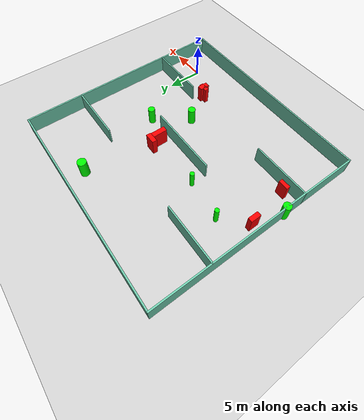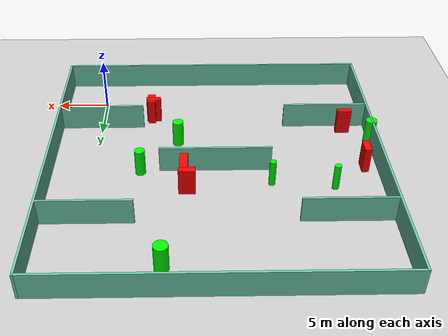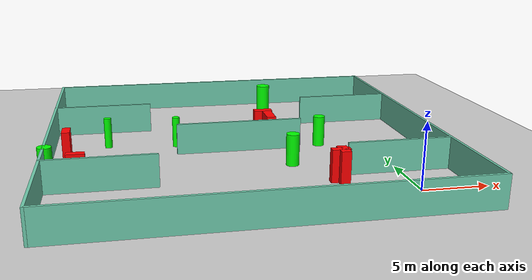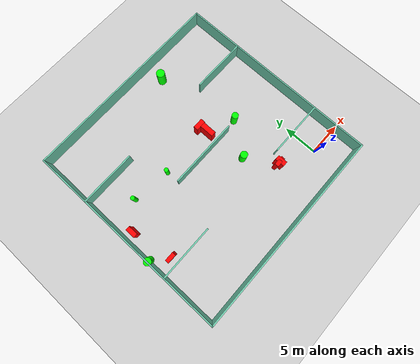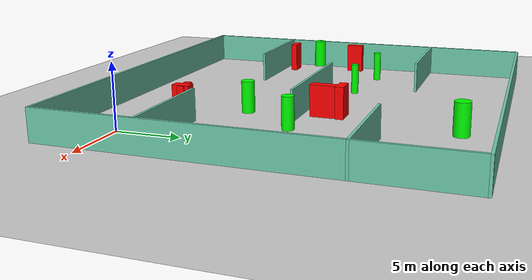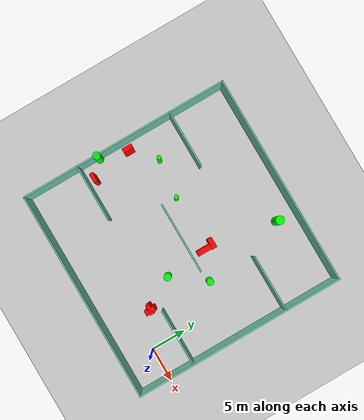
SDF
<sdf version="1.7">
 <world name="default">
  <light name="sun" type="directional">
   <pose>0 0 10 0 -0 0</pose>
   <diffuse>0.8 0.8 0.8 1</diffuse>
   <specular>0.2 0.2 0.2 1</specular>
   <attenuation>
    <range>1000</range>
    <constant>0.9</constant>
    <linear>0.01</linear>
    <quadratic>0.001</quadratic>
   </attenuation>
   <direction>-0.5 0.1 -0.9</direction>
   <spot><inner_angle>0</inner_angle><outer_angle>0</outer_angle><falloff>0</falloff></spot>
  </light>
  <model name="ground_plane">
   <static>1</static>
   <link name="link">
    <collision name="collision">
     <geometry><plane><normal>0 0 1</normal><size>100 100</size></plane></geometry>
     <surface>
      <contact><collide_bitmask>65535</collide_bitmask></contact>
      <friction><ode><mu>100</mu><mu2>50</mu2></ode></friction>
     </surface>
    </collision>
    <visual name="visual">
     <cast_shadows>0</cast_shadows>
     <geometry><plane><normal>0 0 1</normal><size>100 100</size></plane></geometry>
     <material>
      <script><uri>file://media/materials/scripts/gazebo.material</uri><name>Gazebo/Grey</name></script>
     </material>
    </visual>
   </link>
  </model>
  <gravity>0 0 -9.8</gravity>
  <magnetic_field>6e-06 2.3e-05 -4.2e-05</magnetic_field>
  <atmosphere type="adiabatic"/>
  <physics type="ode">
   <max_step_size>0.001</max_step_size>
   <real_time_factor>1</real_time_factor>
   <real_time_update_rate>1000</real_time_update_rate>
  </physics>
  <scene><ambient>0.4 0.4 0.4 1</ambient><background>0.7 0.7 0.7 1</background><shadows>1</shadows></scene>
  <spherical_coordinates>
   <surface_model>EARTH_WGS84</surface_model>
   <latitude_deg>0</latitude_deg>
   <longitude_deg>0</longitude_deg>
   <elevation>0</elevation>
   <heading_deg>0</heading_deg>
  </spherical_coordinates>
  <model name="my_base_walls">
   <link name="Wall_10">
    <collision name="Wall_10_Collision">
     <geometry><box><size>8.2 0.2 2.5</size></box></geometry>
     <pose>0 0 1.25 0 -0 0</pose>
    </collision>
    <visual name="Wall_10_Visual">
     <pose>0 0 1.25 0 -0 0</pose>
     <geometry><box><size>8.2 0.2 2.5</size></box></geometry>
     <material>
      <script><uri>file://media/materials/scripts/gazebo.material</uri><name>Gazebo/Grey</name></script>
      <ambient>0.435294 0.796078 0.67451 1</ambient>
     </material>
     <meta><layer>0</layer></meta>
    </visual>
    <pose>-11 -7 0 0 -0 0</pose>
   </link>
   <link name="Wall_12">
    <collision name="Wall_12_Collision">
     <geometry><box><size>8.2 0.2 2.5</size></box></geometry>
     <pose>0 0 1.25 0 -0 0</pose>
    </collision>
    <visual name="Wall_12_Visual">
     <pose>0 0 1.25 0 -0 0</pose>
     <geometry><box><size>8.2 0.2 2.5</size></box></geometry>
     <material>
      <script><uri>file://media/materials/scripts/gazebo.material</uri><name>Gazebo/Grey</name></script>
      <ambient>0.435294 0.796078 0.67451 1</ambient>
     </material>
     <meta><layer>0</layer></meta>
    </visual>
    <pose>-11 7 0 0 -0 0</pose>
   </link>
   <link name="Wall_14">
    <collision name="Wall_14_Collision">
     <geometry><box><size>8.2 0.2 2.5</size></box></geometry>
     <pose>0 0 1.25 0 -0 0</pose>
    </collision>
    <visual name="Wall_14_Visual">
     <pose>0 0 1.25 0 -0 0</pose>
     <geometry><box><size>8.2 0.2 2.5</size></box></geometry>
     <material>
      <script><uri>file://media/materials/scripts/gazebo.material</uri><name>Gazebo/Grey</name></script>
      <ambient>0.435294 0.796078 0.67451 1</ambient>
     </material>
     <meta><layer>0</layer></meta>
    </visual>
    <pose>11 7 0 0 -0 3.14159</pose>
   </link>
   <link name="Wall_16">
    <collision name="Wall_16_Collision">
     <geometry><box><size>10.2 0.2 2.5</size></box></geometry>
     <pose>0 0 1.25 0 -0 0</pose>
    </collision>
    <visual name="Wall_16_Visual">
     <pose>0 0 1.25 0 -0 0</pose>
     <geometry><box><size>10.2 0.2 2.5</size></box></geometry>
     <material>
      <script><uri>file://media/materials/scripts/gazebo.material</uri><name>Gazebo/Grey</name></script>
      <ambient>0.435294 0.796078 0.67451 1</ambient>
     </material>
     <meta><layer>0</layer></meta>
    </visual>
    <pose>0 0 0 0 -0 3.14159</pose>
   </link>
   <link name="Wall_2">
    <collision name="Wall_2_Collision">
     <geometry><box><size>30.2 0.2 2.5</size></box></geometry>
     <pose>0 0 1.25 0 -0 0</pose>
    </collision>
    <visual name="Wall_2_Visual">
     <pose>0 0 1.25 0 -0 0</pose>
     <geometry><box><size>30.2 0.2 2.5</size></box></geometry>
     <material>
      <script><uri>file://media/materials/scripts/gazebo.material</uri><name>Gazebo/Grey</name></script>
      <ambient>0.435294 0.796078 0.67451 1</ambient>
     </material>
     <meta><layer>0</layer></meta>
    </visual>
    <pose>0 -15 0 0 -0 3.14159</pose>
   </link>
   <link name="Wall_3">
    <collision name="Wall_3_Collision">
     <geometry><box><size>30.2 0.2 2.5</size></box></geometry>
     <pose>0 0 1.25 0 -0 0</pose>
    </collision>
    <visual name="Wall_3_Visual">
     <pose>0 0 1.25 0 -0 0</pose>
     <geometry><box><size>30.2 0.2 2.5</size></box></geometry>
     <material>
      <script><uri>file://media/materials/scripts/gazebo.material</uri><name>Gazebo/Grey</name></script>
      <ambient>0.435294 0.796078 0.67451 1</ambient>
     </material>
     <meta><layer>0</layer></meta>
    </visual>
    <pose>-15 0 0 0 -0 1.5708</pose>
   </link>
   <link name="Wall_4">
    <collision name="Wall_4_Collision">
     <geometry><box><size>30.2 0.2 2.5</size></box></geometry>
     <pose>0 0 1.25 0 -0 0</pose>
    </collision>
    <visual name="Wall_4_Visual">
     <pose>0 0 1.25 0 -0 0</pose>
     <geometry><box><size>30.2 0.2 2.5</size></box></geometry>
     <material>
      <script><uri>file://media/materials/scripts/gazebo.material</uri><name>Gazebo/Grey</name></script>
      <ambient>0.435294 0.796078 0.67451 1</ambient>
     </material>
     <meta><layer>0</layer></meta>
    </visual>
    <pose>0 15 0 0 -0 0</pose>
   </link>
   <link name="Wall_6">
    <collision name="Wall_6_Collision">
     <geometry><box><size>30.2 0.2 2.5</size></box></geometry>
     <pose>0 0 1.25 0 -0 0</pose>
    </collision>
    <visual name="Wall_6_Visual">
     <pose>0 0 1.25 0 -0 0</pose>
     <geometry><box><size>30.2 0.2 2.5</size></box></geometry>
     <material>
      <script><uri>file://media/materials/scripts/gazebo.material</uri><name>Gazebo/Grey</name></script>
      <ambient>0.435294 0.796078 0.67451 1</ambient>
     </material>
     <meta><layer>0</layer></meta>
    </visual>
    <pose>15 0 0 0 -0 1.5708</pose>
   </link>
   <link name="Wall_8">
    <collision name="Wall_8_Collision">
     <geometry><box><size>8.2 0.2 2.5</size></box></geometry>
     <pose>0 0 1.25 0 -0 0</pose>
    </collision>
    <visual name="Wall_8_Visual">
     <pose>0 0 1.25 0 -0 0</pose>
     <geometry><box><size>8.2 0.2 2.5</size></box></geometry>
     <material>
      <script><uri>file://media/materials/scripts/gazebo.material</uri><name>Gazebo/Grey</name></script>
      <ambient>0.435294 0.796078 0.67451 1</ambient>
     </material>
     <meta><layer>0</layer></meta>
    </visual>
    <pose>11 -7 0 0 -0 3.14159</pose>
   </link>
   <static>1</static>
   <pose>-11 11 0 0 -0 0</pose>
  </model>
  <model name="cylinder1">
   <static>1</static>
   <link name="link">
    <inertial>
     <mass>1</mass>
     <inertia><ixx>0.5</ixx><ixy>0</ixy><ixz>0</ixz><iyy>0.5</iyy><iyz>0</iyz><izz>1</izz></inertia>
    </inertial>
    <collision name="collision">
     <geometry><cylinder><radius>0.30173438354964816</radius><length>2.5</length></cylinder></geometry>
    </collision>
    <visual name="visual">
     <geometry><cylinder><radius>0.30173438354964816</radius><length>2.5</length></cylinder></geometry>
     <material>
      <ambient>0 1 0 1</ambient>
      <diffuse>0 1 0 1</diffuse>
      <specular>0.1 0.1 0.1 1</specular>
      <emissive>0 0 0 0</emissive>
     </material>
    </visual>
   </link>
   <pose>-21.57367675021284 13.789140989886402 1.25 0 0 0</pose>
  </model>
  <model name="cylinder2">
   <static>1</static>
   <link name="link">
    <inertial>
     <mass>1</mass>
     <inertia><ixx>0.5</ixx><ixy>0</ixy><ixz>0</ixz><iyy>0.5</iyy><iyz>0</iyz><izz>1</izz></inertia>
    </inertial>
    <collision name="collision">
     <geometry><cylinder><radius>0.5101074212139692</radius><length>2.5</length></cylinder></geometry>
    </collision>
    <visual name="visual">
     <geometry><cylinder><radius>0.5101074212139692</radius><length>2.5</length></cylinder></geometry>
     <material>
      <ambient>0 1 0 1</ambient>
      <diffuse>0 1 0 1</diffuse>
      <specular>0.1 0.1 0.1 1</specular>
      <emissive>0 0 0 0</emissive>
     </material>
    </visual>
   </link>
   <pose>-7.55016374760892 6.864120063001982 1.25 0 0 0</pose>
  </model>
  <model name="cylinder3">
   <static>1</static>
   <link name="link">
    <inertial>
     <mass>1</mass>
     <inertia><ixx>0.5</ixx><ixy>0</ixy><ixz>0</ixz><iyy>0.5</iyy><iyz>0</iyz><izz>1</izz></inertia>
    </inertial>
    <collision name="collision">
     <geometry><cylinder><radius>0.6121074722607507</radius><length>2.5</length></cylinder></geometry>
    </collision>
    <visual name="visual">
     <geometry><cylinder><radius>0.6121074722607507</radius><length>2.5</length></cylinder></geometry>
     <material>
      <ambient>0 1 0 1</ambient>
      <diffuse>0 1 0 1</diffuse>
      <specular>0.1 0.1 0.1 1</specular>
      <emissive>0 0 0 0</emissive>
     </material>
    </visual>
   </link>
   <pose>-6.516514480403673 23.265112626658166 1.25 0 0 0</pose>
  </model>
  <model name="cylinder4">
   <static>1</static>
   <link name="link">
    <inertial>
     <mass>1</mass>
     <inertia><ixx>0.5</ixx><ixy>0</ixy><ixz>0</ixz><iyy>0.5</iyy><iyz>0</iyz><izz>1</izz></inertia>
    </inertial>
    <collision name="collision">
     <geometry><cylinder><radius>0.46833482519758995</radius><length>2.5</length></cylinder></geometry>
    </collision>
    <visual name="visual">
     <geometry><cylinder><radius>0.46833482519758995</radius><length>2.5</length></cylinder></geometry>
     <material>
      <ambient>0 1 0 1</ambient>
      <diffuse>0 1 0 1</diffuse>
      <specular>0.1 0.1 0.1 1</specular>
      <emissive>0 0 0 0</emissive>
     </material>
    </visual>
   </link>
   <pose>-4.18714958508923 11.355257346536378 1.25 0 0 0</pose>
  </model>
  <model name="cylinder5">
   <static>1</static>
   <link name="link">
    <inertial>
     <mass>1</mass>
     <inertia><ixx>0.5</ixx><ixy>0</ixy><ixz>0</ixz><iyy>0.5</iyy><iyz>0</iyz><izz>1</izz></inertia>
    </inertial>
    <collision name="collision">
     <geometry><cylinder><radius>0.3011053068294705</radius><length>2.5</length></cylinder></geometry>
    </collision>
    <visual name="visual">
     <geometry><cylinder><radius>0.3011053068294705</radius><length>2.5</length></cylinder></geometry>
     <material>
      <ambient>0 1 0 1</ambient>
      <diffuse>0 1 0 1</diffuse>
      <specular>0.1 0.1 0.1 1</specular>
      <emissive>0 0 0 0</emissive>
     </material>
    </visual>
   </link>
   <pose>-15.991171688157294 13.129621730777977 1.25 0 0 0</pose>
  </model>
  <model name="cylinder6">
   <static>1</static>
   <link name="link">
    <inertial>
     <mass>1</mass>
     <inertia><ixx>0.5</ixx><ixy>0</ixy><ixz>0</ixz><iyy>0.5</iyy><iyz>0</iyz><izz>1</izz></inertia>
    </inertial>
    <collision name="collision">
     <geometry><cylinder><radius>0.5304417656237117</radius><length>2.5</length></cylinder></geometry>
    </collision>
    <visual name="visual">
     <geometry><cylinder><radius>0.5304417656237117</radius><length>2.5</length></cylinder></geometry>
     <material>
      <ambient>0 1 0 1</ambient>
      <diffuse>0 1 0 1</diffuse>
      <specular>0.1 0.1 0.1 1</specular>
      <emissive>0 0 0 0</emissive>
     </material>
    </visual>
   </link>
   <pose>-25.923868030749443 6.8845955054260095 1.25 0 0 0</pose>
  </model>
  <model name="box1">
   <static>1</static>
   <link name="link">
    <inertial>
     <mass>1</mass>
     <inertia><ixx>0.083</ixx><ixy>0</ixy><ixz>0</ixz><iyy>0.083</iyy><iyz>0</iyz><izz>0.083</izz></inertia>
    </inertial>
    <collision name="collision">
     <geometry><box><size>1.504547693726096 0.6742895706108474 2.5</size></box></geometry>
    </collision>
    <visual name="visual">
     <geometry><box><size>1.504547693726096 0.6742895706108474 2.5</size></box></geometry>
     <material>
      <ambient>1 0 0 1</ambient>
      <diffuse>1 0 0 1</diffuse>
      <specular>0.1 0.1 0.1 1</specular>
      <emissive>0 0 0 0</emissive>
     </material>
    </visual>
    <sensor name="my_contact" type="contact">
     <contact><collision>box_collision</collision><topic>__default_topic__</topic></contact>
    </sensor>
   </link>
   <pose>-8.429530265882597 14.108939265158234 1.25 0 0 0</pose>
  </model>
  <model name="box2">
   <static>1</static>
   <link name="link">
    <inertial>
     <mass>1</mass>
     <inertia><ixx>0.083</ixx><ixy>0</ixy><ixz>0</ixz><iyy>0.083</iyy><iyz>0</iyz><izz>0.083</izz></inertia>
    </inertial>
    <collision name="collision">
     <geometry><box><size>1.322130784811833 0.5497408441263926 2.5</size></box></geometry>
    </collision>
    <visual name="visual">
     <geometry><box><size>1.322130784811833 0.5497408441263926 2.5</size></box></geometry>
     <material>
      <ambient>1 0 0 1</ambient>
      <diffuse>1 0 0 1</diffuse>
      <specular>0.1 0.1 0.1 1</specular>
      <emissive>0 0 0 0</emissive>
     </material>
    </visual>
    <sensor name="my_contact" type="contact">
     <contact><collision>box_collision</collision><topic>__default_topic__</topic></contact>
    </sensor>
   </link>
   <pose>-23.652108933634054 5.089707746170502 1.25 0 0 0</pose>
  </model>
  <model name="box3">
   <static>1</static>
   <link name="link">
    <inertial>
     <mass>1</mass>
     <inertia><ixx>0.083</ixx><ixy>0</ixy><ixz>0</ixz><iyy>0.083</iyy><iyz>0</iyz><izz>0.083</izz></inertia>
    </inertial>
    <collision name="collision">
     <geometry><box><size>0.7318788071056443 1.3944493794236203 2.5</size></box></geometry>
    </collision>
    <visual name="visual">
     <geometry><box><size>0.7318788071056443 1.3944493794236203 2.5</size></box></geometry>
     <material>
      <ambient>1 0 0 1</ambient>
      <diffuse>1 0 0 1</diffuse>
      <specular>0.1 0.1 0.1 1</specular>
      <emissive>0 0 0 0</emissive>
     </material>
    </visual>
    <sensor name="my_contact" type="contact">
     <contact><collision>box_collision</collision><topic>__default_topic__</topic></contact>
    </sensor>
   </link>
   <pose>-4.875863181256193 2.6733484543420882 1.25 0 0 0</pose>
  </model>
  <model name="box4">
   <static>1</static>
   <link name="link">
    <inertial>
     <mass>1</mass>
     <inertia><ixx>0.083</ixx><ixy>0</ixy><ixz>0</ixz><iyy>0.083</iyy><iyz>0</iyz><izz>0.083</izz></inertia>
    </inertial>
    <collision name="collision">
     <geometry><box><size>1.4008628638419236 0.5593323102034263 2.5</size></box></geometry>
    </collision>
    <visual name="visual">
     <geometry><box><size>1.4008628638419236 0.5593323102034263 2.5</size></box></geometry>
     <material>
      <ambient>1 0 0 1</ambient>
      <diffuse>1 0 0 1</diffuse>
      <specular>0.1 0.1 0.1 1</specular>
      <emissive>0 0 0 0</emissive>
     </material>
    </visual>
    <sensor name="my_contact" type="contact">
     <contact><collision>box_collision</collision><topic>__default_topic__</topic></contact>
    </sensor>
   </link>
   <pose>-5.071848837389085 2.749290454138012 1.25 0 0 0</pose>
  </model>
  <model name="box5">
   <static>1</static>
   <link name="link">
    <inertial>
     <mass>1</mass>
     <inertia><ixx>0.083</ixx><ixy>0</ixy><ixz>0</ixz><iyy>0.083</iyy><iyz>0</iyz><izz>0.083</izz></inertia>
    </inertial>
    <collision name="collision">
     <geometry><box><size>0.6232203815509931 1.4209090794816501 2.5</size></box></geometry>
    </collision>
    <visual name="visual">
     <geometry><box><size>0.6232203815509931 1.4209090794816501 2.5</size></box></geometry>
     <material>
      <ambient>1 0 0 1</ambient>
      <diffuse>1 0 0 1</diffuse>
      <specular>0.1 0.1 0.1 1</specular>
      <emissive>0 0 0 0</emissive>
     </material>
    </visual>
    <sensor name="my_contact" type="contact">
     <contact><collision>box_collision</collision><topic>__default_topic__</topic></contact>
    </sensor>
   </link>
   <pose>-24.688761472812807 10.87759519635739 1.25 0 0 0</pose>
  </model>
  <model name="box6">
   <static>1</static>
   <link name="link">
    <inertial>
     <mass>1</mass>
     <inertia><ixx>0.083</ixx><ixy>0</ixy><ixz>0</ixz><iyy>0.083</iyy><iyz>0</iyz><izz>0.083</izz></inertia>
    </inertial>
    <collision name="collision">
     <geometry><box><size>0.7450603845645674 2.0134701118234046 2.5</size></box></geometry>
    </collision>
    <visual name="visual">
     <geometry><box><size>0.7450603845645674 2.0134701118234046 2.5</size></box></geometry>
     <material>
      <ambient>1 0 0 1</ambient>
      <diffuse>1 0 0 1</diffuse>
      <specular>0.1 0.1 0.1 1</specular>
      <emissive>0 0 0 0</emissive>
     </material>
    </visual>
    <sensor name="my_contact" type="contact">
     <contact><collision>box_collision</collision><topic>__default_topic__</topic></contact>
    </sensor>
   </link>
   <pose>-8.152997912897149 12.769639706477463 1.25 0 0 0</pose>
  </model>
 </world>
</sdf>
